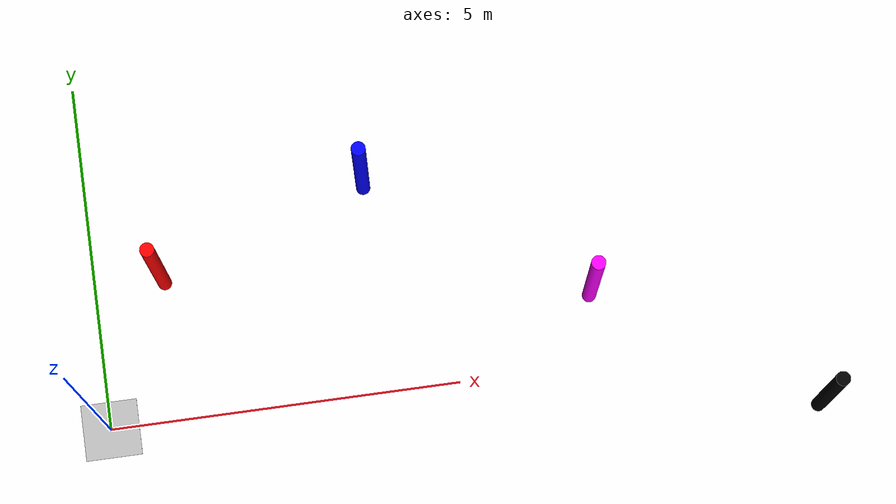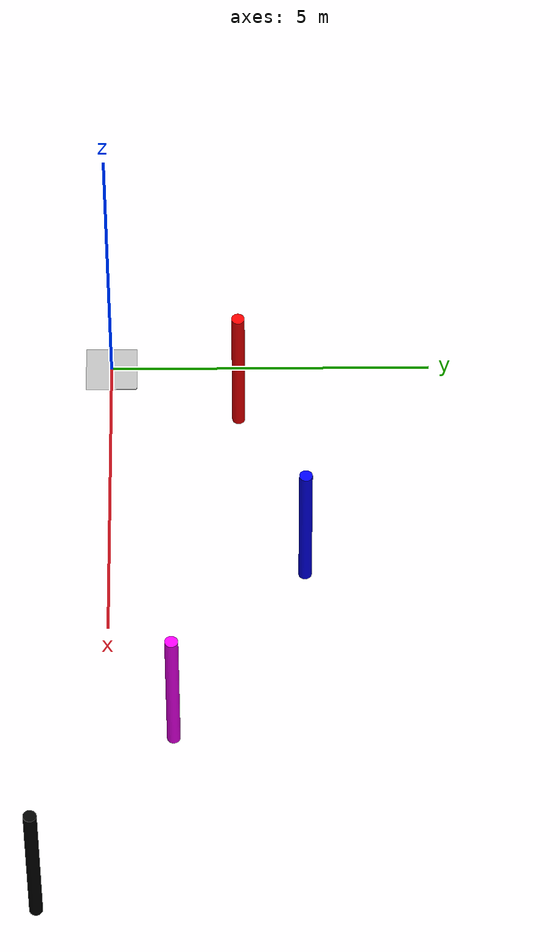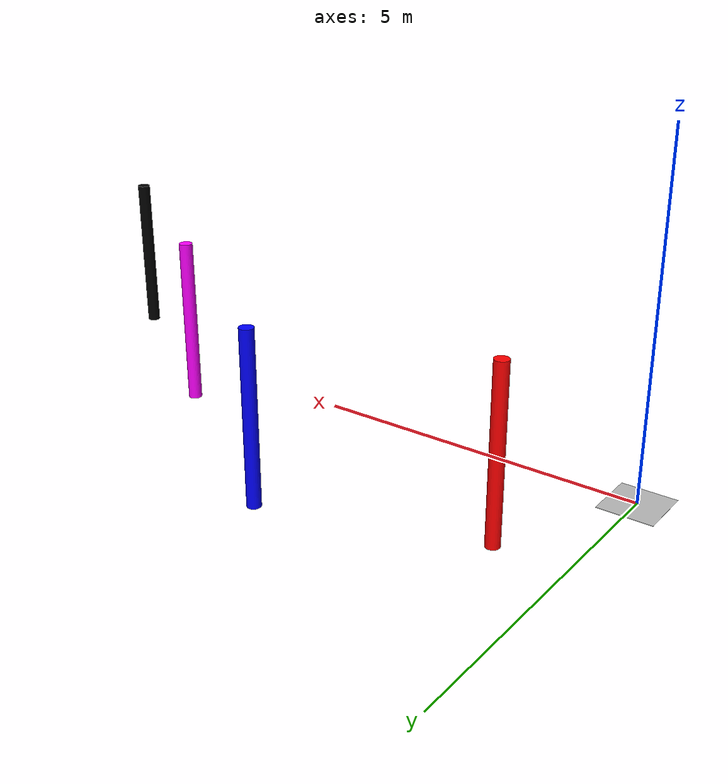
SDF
<sdf version="1.6">
 <world name="indoor_arena">
  <include><uri>model://sun</uri></include>
  <model name="circulo_azul"><include><uri>model://circulo_azul</uri></include></model>
  <model name="barra_azul"><include><uri>model://barra_azul</uri><pose>4 3 1.25 0 0 0</pose></include></model>
  <model name="barra_preto_fosco">
   <include><uri>model://barra_preto_fosco</uri><pose>10 -1 1.25 0 0 0</pose></include>
  </model>
  <model name="barra_rosa"><include><uri>model://barra_rosa</uri><pose>7 1 1.25 0 0 0</pose></include></model>
  <model name="barra_vermelha">
   <include><uri>model://barra_vermelha</uri><pose>1 2 1.25 0 0 0</pose></include>
  </model>
 </world>
</sdf>

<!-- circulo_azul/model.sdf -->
<sdf version='1.7'>
  <model name='circulo_azul'>
    <link name='link'>
      <visual name='visual'>
        <geometry>
          <box>
            <size>0.8 0.8 0.006</size>
          </box>
        </geometry>
        <material>
          <script>
            <uri>model://circulo_azul/materials/scripts/</uri>
            <uri>model://circulo_azul/materials/textures/</uri>
            <name>circulo_azul</name>
          </script>
        </material>
      </visual>
      <collision name='collision'>
        <geometry>
          <box>
            <size>0.8 0.8 0.005</size>
          </box>
        </geometry>
      </collision>
    </link>
  </model>
</sdf>

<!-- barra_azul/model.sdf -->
<sdf version="1.7">
  <model name="barra_azul">
    <!-- Define o modelo como estático (não se move) -->
    <static>true</static>

    <link name="link">
      <!-- Elemento visual: define a aparência da barra -->
      <visual name="visual">
        <geometry>
          <cylinder>
            <!-- Defina o raio e a altura (comprimento) do cilindro -->
            <radius>0.1</radius>
            <length>2.5</length>
          </cylinder>
        </geometry>
        <material>
          <ambient>0.0 0.0 1.0 1.0</ambient>
          <diffuse>0.0 0.0 1.0 1.0</diffuse>
        </material>
      </visual>

      <!-- Elemento de colisão: geralmente igual à geometria visual -->
      <collision name="collision">
        <geometry>
          <cylinder>
            <radius>0.1</radius>
            <length>2.5</length>
          </cylinder>
        </geometry>
      </collision>
    </link>
  </model>
</sdf>

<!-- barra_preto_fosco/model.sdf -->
<sdf version="1.7">
  <model name="barra_preto_fosco">
    <!-- Define o modelo como estático (não se move) -->
    <static>true</static>

    <link name="link">
      <!-- Elemento visual: define a aparência da barra -->
      <visual name="visual">
        <geometry>
          <cylinder>
            <!-- Defina o raio e a altura (comprimento) do cilindro -->
            <radius>0.1</radius>
            <length>2.5</length>
          </cylinder>
        </geometry>
        <material>
          <ambient>0.0 0.0 0.0 1.0</ambient>
          <diffuse>0.0 0.0 0.0 1.0</diffuse>
          <specular>0.0 0.0 0.0 1.0</specular>
          <emissive>0.0 0.0 0.0 0.0</emissive>
        </material>
      </visual>

      <!-- Elemento de colisão: geralmente igual à geometria visual -->
      <collision name="collision">
        <geometry>
          <cylinder>
            <radius>0.1</radius>
            <length>2.5</length>
          </cylinder>
        </geometry>
      </collision>
    </link>
  </model>
</sdf>

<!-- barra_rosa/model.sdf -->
<sdf version="1.7">
  <model name="barra_rosa">
    <!-- Define o modelo como estático (não se move) -->
    <static>true</static>

    <link name="link">
      <!-- Elemento visual: define a aparência da barra -->
      <visual name="visual">
        <geometry>
          <cylinder>
            <!-- Defina o raio e a altura (comprimento) do cilindro -->
            <radius>0.1</radius>
            <length>2.5</length>
          </cylinder>
        </geometry>
        <material>
          <ambient>1.0 0.0 1.0 1.0</ambient>  <!-- Rosa -->
          <diffuse>1.0 0.0 1.0 1.0</diffuse>
        </material>
      </visual>

      <!-- Elemento de colisão: geralmente igual à geometria visual -->
      <collision name="collision">
        <geometry>
          <cylinder>
            <radius>0.1</radius>
            <length>2.5</length>
          </cylinder>
        </geometry>
      </collision>
    </link>
  </model>
</sdf>

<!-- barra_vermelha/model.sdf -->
<sdf version="1.7">
  <model name="barra_vermelha">
    <!-- Define o modelo como estático (não se move) -->
    <static>true</static>

    <link name="link">
      <!-- Elemento visual: define a aparência da barra -->
      <visual name="visual">
        <geometry>
          <cylinder>
            <!-- Defina o raio e a altura (comprimento) do cilindro -->
            <radius>0.1</radius>
            <length>2.5</length>
          </cylinder>
        </geometry>
        <material>
          <ambient>1.0 0.0 0.0 1.0</ambient>  <!-- Vermelho -->
          <diffuse>1.0 0.0 0.0 1.0</diffuse>
        </material>
      </visual>

      <!-- Elemento de colisão: geralmente igual à geometria visual -->
      <collision name="collision">
        <geometry>
          <cylinder>
            <radius>0.1</radius>
            <length>2.5</length>
          </cylinder>
        </geometry>
      </collision>
    </link>
  </model>
</sdf>
